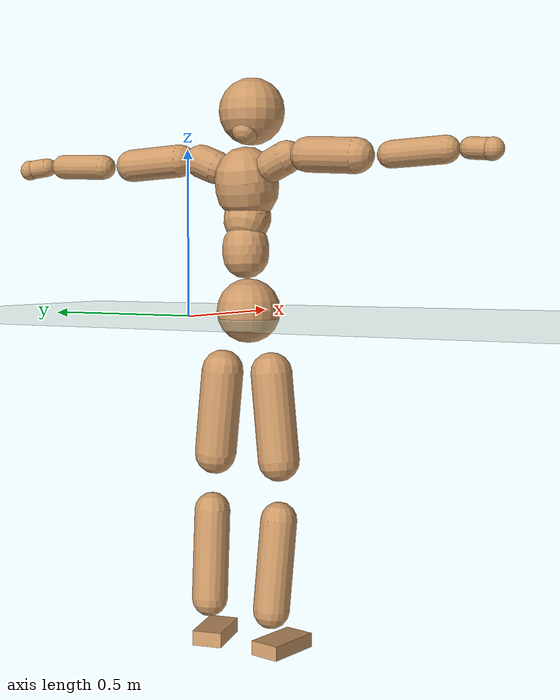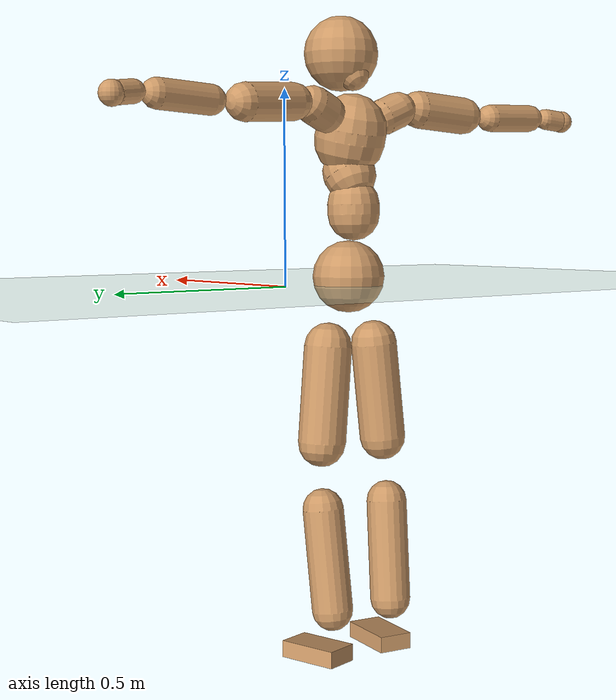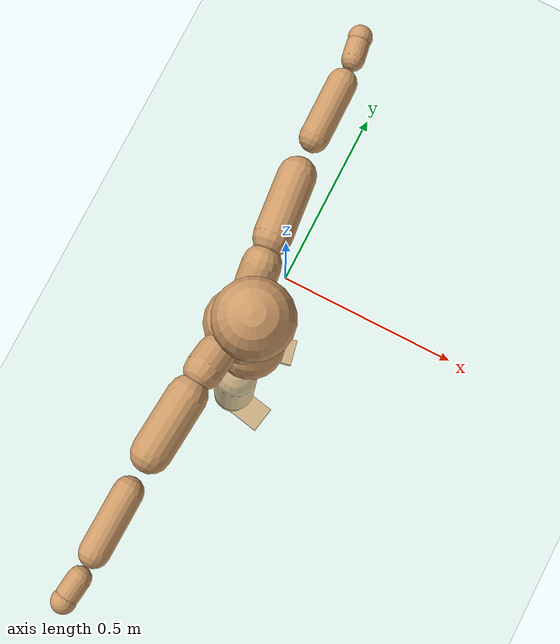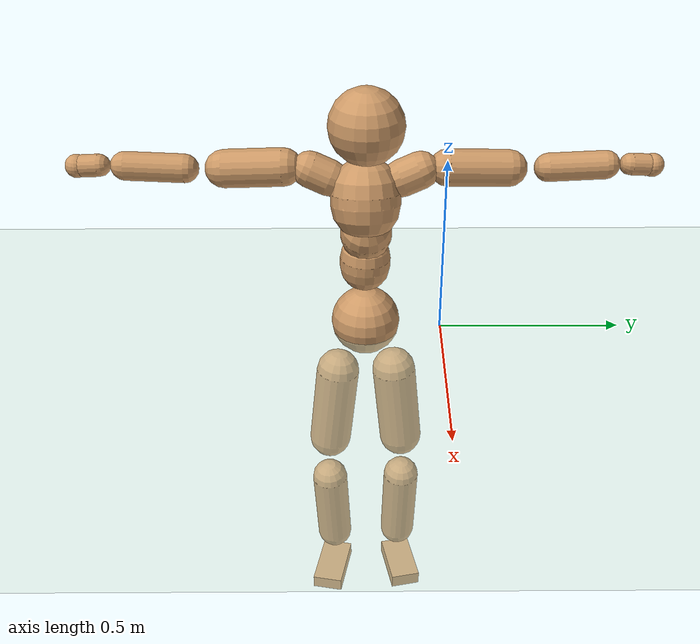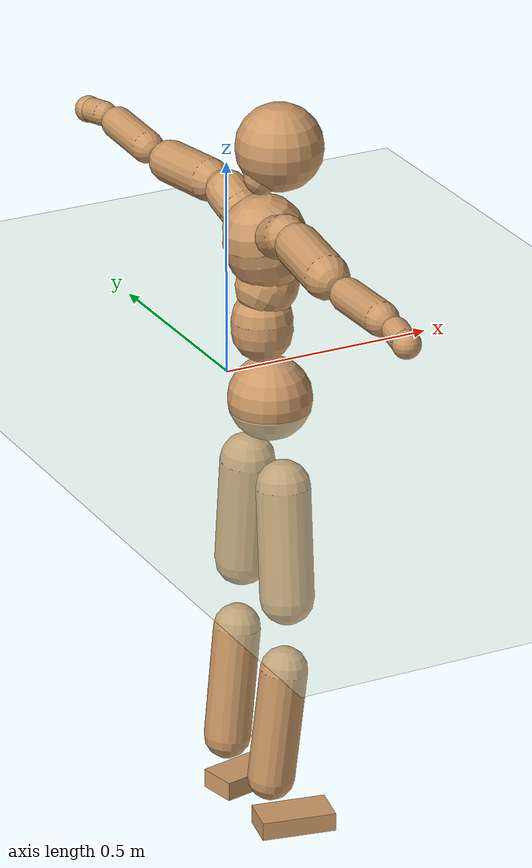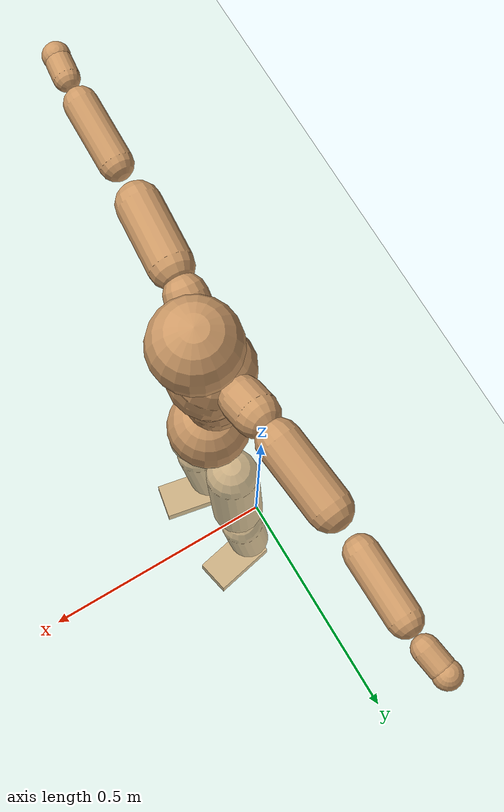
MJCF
<mujoco model="humanoid">
  <compiler coordinate="local" angle="radian"/>
  <default>
    <joint damping="0.0" armature="0.01" stiffness="0.0" limited="true"/>
    <geom conaffinity="1" condim="3" contype="7" margin="0.001" rgba="0.8 0.6 .4 1"/>
  </default>
  <asset>
    <texture type="skybox" builtin="gradient" rgb1=".4 .5 .6" rgb2="0 0 0" width="100" height="100"/>
    <texture builtin="flat" height="1278" mark="cross" markrgb="1 1 1" name="texgeom" random="0.01" rgb1="0.8 0.6 0.4" rgb2="0.8 0.6 0.4" type="cube" width="127"/>
    <texture builtin="checker" height="100" name="texplane" rgb1="0 0 0" rgb2="0.8 0.8 0.8" type="2d" width="100"/>
    <material name="MatPlane" reflectance="0.5" shininess="1" specular="1" texrepeat="60 60" texture="texplane"/>
    <material name="geom" texture="texgeom" texuniform="true"/>
  </asset>
  <worldbody>
    <light cutoff="100" diffuse="1 1 1" dir="-0 0 -1.3" directional="true" exponent="1" pos="0 0 1.3" specular=".1 .1 .1"/>
    <geom conaffinity="1" condim="3" name="floor" pos="0 0 0" rgba="0.8 0.9 0.8 1" size="100 100 .2" type="plane" material="MatPlane"/>
    <body name="Pelvis" pos="-0.0008 -0.2096 0.0213">
      <freejoint name="Pelvis"/>
      <geom type="sphere" contype="1" conaffinity="1" density="500" size="0.0950" pos="0.0000 0.0000 0.0000" name="Pelvis"/>
      <body name="L_Hip" pos="-0.0125 0.0741 -0.0959">
        <joint name="L_Hip_x" type="hinge" pos="0 0 0" axis="1 0 0" stiffness="800" damping="80" armature="0.02" range="-180.0000 180.0000"/>
        <joint name="L_Hip_y" type="hinge" pos="0 0 0" axis="0 1 0" stiffness="800" damping="80" armature="0.02" range="-180.0000 180.0000"/>
        <joint name="L_Hip_z" type="hinge" pos="0 0 0" axis="0 0 1" stiffness="800" damping="80" armature="0.02" range="-180.0000 180.0000"/>
        <geom type="capsule" contype="1" conaffinity="1" density="500" fromto="-0.0009 0.0078 -0.0839 -0.0034 0.0310 -0.3356" size="0.0624" name="L_Hip"/>
        <body name="L_Knee" pos="-0.0043 0.0388 -0.4195">
          <joint name="L_Knee_x" type="hinge" pos="0 0 0" axis="1 0 0" stiffness="800" damping="80" armature="0.02" range="-180.0000 180.0000"/>
          <joint name="L_Knee_y" type="hinge" pos="0 0 0" axis="0 1 0" stiffness="800" damping="80" armature="0.02" range="-180.0000 180.0000"/>
          <joint name="L_Knee_z" type="hinge" pos="0 0 0" axis="0 0 1" stiffness="800" damping="80" armature="0.02" range="-180.0000 180.0000"/>
          <geom type="capsule" contype="1" conaffinity="1" density="500" fromto="-0.0097 -0.0025 -0.0885 -0.0386 -0.0099 -0.3539" size="0.0537" name="L_Knee"/>
          <body name="L_Ankle" pos="-0.0483 -0.0123 -0.4424">
            <joint name="L_Ankle_x" type="hinge" pos="0 0 0" axis="1 0 0" stiffness="800" damping="80" armature="0.02" range="-180.0000 180.0000"/>
            <joint name="L_Ankle_y" type="hinge" pos="0 0 0" axis="0 1 0" stiffness="800" damping="80" armature="0.02" range="-180.0000 180.0000"/>
            <joint name="L_Ankle_z" type="hinge" pos="0 0 0" axis="0 0 1" stiffness="800" damping="80" armature="0.02" range="-180.0000 180.0000"/>
            <geom type="box" contype="1" conaffinity="1" density="500" pos="0.0598 0.0123 -0.0304" size="0.0829 0.0449 0.0222" quat="0.9948 0.0000 0.0000 0.1015" name="L_Ankle"/>
            <body name="L_Toe" pos="0.1197 0.0247 -0.0608">
              <joint name="L_Toe_x" type="hinge" pos="0 0 0" axis="1 0 0" stiffness="500" damping="50" armature="0.02" range="-180.0000 180.0000"/>
              <joint name="L_Toe_y" type="hinge" pos="0 0 0" axis="0 1 0" stiffness="500" damping="50" armature="0.02" range="-180.0000 180.0000"/>
              <joint name="L_Toe_z" type="hinge" pos="0 0 0" axis="0 0 1" stiffness="500" damping="50" armature="0.02" range="-180.0000 180.0000"/>
              <geom type="box" contype="1" conaffinity="1" density="500" pos="0.0000 0.0000 0.0297" size="0.0009 0.0023 0.0011" quat="0.9942 0.0000 0.0000 0.1077" name="L_Toe"/>
            </body>
          </body>
        </body>
      </body>
      <body name="R_Hip" pos="-0.0078 -0.0716 -0.0952">
        <joint name="R_Hip_x" type="hinge" pos="0 0 0" axis="1 0 0" stiffness="800" damping="80" armature="0.02" range="-180.0000 180.0000"/>
        <joint name="R_Hip_y" type="hinge" pos="0 0 0" axis="0 1 0" stiffness="800" damping="80" armature="0.02" range="-180.0000 180.0000"/>
        <joint name="R_Hip_z" type="hinge" pos="0 0 0" axis="0 0 1" stiffness="800" damping="80" armature="0.02" range="-180.0000 180.0000"/>
        <geom type="capsule" contype="1" conaffinity="1" density="500" fromto="-0.0014 -0.0093 -0.0856 -0.0058 -0.0371 -0.3423" size="0.0614" name="R_Hip"/>
        <body name="R_Knee" pos="-0.0072 -0.0463 -0.4279">
          <joint name="R_Knee_x" type="hinge" pos="0 0 0" axis="1 0 0" stiffness="800" damping="80" armature="0.02" range="-180.0000 180.0000"/>
          <joint name="R_Knee_y" type="hinge" pos="0 0 0" axis="0 1 0" stiffness="800" damping="80" armature="0.02" range="-180.0000 180.0000"/>
          <joint name="R_Knee_z" type="hinge" pos="0 0 0" axis="0 0 1" stiffness="800" damping="80" armature="0.02" range="-180.0000 180.0000"/>
          <geom type="capsule" contype="1" conaffinity="1" density="500" fromto="-0.0090 0.0033 -0.0886 -0.0358 0.0131 -0.3544" size="0.054" name="R_Knee"/>
          <body name="R_Ankle" pos="-0.0448 0.0164 -0.443">
            <joint name="R_Ankle_x" type="hinge" pos="0 0 0" axis="1 0 0" stiffness="800" damping="80" armature="0.02" range="-180.0000 180.0000"/>
            <joint name="R_Ankle_y" type="hinge" pos="0 0 0" axis="0 1 0" stiffness="800" damping="80" armature="0.02" range="-180.0000 180.0000"/>
            <joint name="R_Ankle_z" type="hinge" pos="0 0 0" axis="0 0 1" stiffness="800" damping="80" armature="0.02" range="-180.0000 180.0000"/>
            <geom type="box" contype="1" conaffinity="1" density="500" pos="0.0616 -0.0118 -0.0267" size="0.0856 0.0461 0.0215" quat="0.9955 0.0000 0.0000 -0.0948" name="R_Ankle"/>
            <body name="R_Toe" pos="0.1233 -0.0237 -0.0534">
              <joint name="R_Toe_x" type="hinge" pos="0 0 0" axis="1 0 0" stiffness="500" damping="50" armature="0.02" range="-180.0000 180.0000"/>
              <joint name="R_Toe_y" type="hinge" pos="0 0 0" axis="0 1 0" stiffness="500" damping="50" armature="0.02" range="-180.0000 180.0000"/>
              <joint name="R_Toe_z" type="hinge" pos="0 0 0" axis="0 0 1" stiffness="500" damping="50" armature="0.02" range="-180.0000 180.0000"/>
              <geom type="box" contype="1" conaffinity="1" density="500" pos="0.0000 0.0000 0.0286" size="0.0008 0.0022 0.0012" quat="0.9963 0.0000 0.0000 -0.0856" name="R_Toe"/>
            </body>
          </body>
        </body>
      </body>
      <body name="Torso" pos="-0.0194 -0.0025 0.1094">
        <joint name="Torso_x" type="hinge" pos="0 0 0" axis="1 0 0" stiffness="1000" damping="100" armature="0.02" range="-180.0000 180.0000"/>
        <joint name="Torso_y" type="hinge" pos="0 0 0" axis="0 1 0" stiffness="1000" damping="100" armature="0.02" range="-180.0000 180.0000"/>
        <joint name="Torso_z" type="hinge" pos="0 0 0" axis="0 0 1" stiffness="1000" damping="100" armature="0.02" range="-180.0000 180.0000"/>
        <geom type="capsule" contype="1" conaffinity="1" density="500" fromto="-0.0001 0.0024 0.0811 -0.0001 0.0016 0.0541" size="0.0685" name="Torso"/>
        <body name="Spine" pos="-0.0001 0.0039 0.1352">
          <joint name="Spine_x" type="hinge" pos="0 0 0" axis="1 0 0" stiffness="1000" damping="100" armature="0.02" range="-180.0000 180.0000"/>
          <joint name="Spine_y" type="hinge" pos="0 0 0" axis="0 1 0" stiffness="1000" damping="100" armature="0.02" range="-180.0000 180.0000"/>
          <joint name="Spine_z" type="hinge" pos="0 0 0" axis="0 0 1" stiffness="1000" damping="100" armature="0.02" range="-180.0000 180.0000"/>
          <geom type="capsule" contype="1" conaffinity="1" density="500" fromto="0.0169 0.0008 0.0306 0.0113 0.0005 0.0204" size="0.0691" name="Spine"/>
          <body name="Chest" pos="0.0282 0.0013 0.0509">
            <joint name="Chest_x" type="hinge" pos="0 0 0" axis="1 0 0" stiffness="1000" damping="100" armature="0.02" range="-180.0000 180.0000"/>
            <joint name="Chest_y" type="hinge" pos="0 0 0" axis="0 1 0" stiffness="1000" damping="100" armature="0.02" range="-180.0000 180.0000"/>
            <joint name="Chest_z" type="hinge" pos="0 0 0" axis="0 0 1" stiffness="1000" damping="100" armature="0.02" range="-180.0000 180.0000"/>
            <geom type="capsule" contype="1" conaffinity="1" density="500" fromto="-0.0221 -0.0012 0.0892 -0.0147 -0.0008 0.0595" size="0.093" name="Chest"/>
            <body name="Neck" pos="-0.0399 -0.0039 0.2137">
              <joint name="Neck_x" type="hinge" pos="0 0 0" axis="1 0 0" stiffness="500" damping="50" armature="0.02" range="-180.0000 180.0000"/>
              <joint name="Neck_y" type="hinge" pos="0 0 0" axis="0 1 0" stiffness="500" damping="50" armature="0.02" range="-180.0000 180.0000"/>
              <joint name="Neck_z" type="hinge" pos="0 0 0" axis="0 0 1" stiffness="500" damping="50" armature="0.02" range="-180.0000 180.0000"/>
              <geom type="capsule" contype="1" conaffinity="1" density="500" fromto="0.0112 0.0010 0.0145 0.0449 0.0042 0.0581" size="0.0406" name="Neck"/>
              <body name="Head" pos="0.0561 0.0052 0.0726">
                <joint name="Head_x" type="hinge" pos="0 0 0" axis="1 0 0" stiffness="500" damping="50" armature="0.02" range="-180.0000 180.0000"/>
                <joint name="Head_y" type="hinge" pos="0 0 0" axis="0 1 0" stiffness="500" damping="50" armature="0.02" range="-180.0000 180.0000"/>
                <joint name="Head_z" type="hinge" pos="0 0 0" axis="0 0 1" stiffness="500" damping="50" armature="0.02" range="-180.0000 180.0000"/>
                <geom type="sphere" contype="1" conaffinity="1" density="500" size="0.0975" pos="0.0000 0.0000 0.0000" name="Head"/>
              </body>
            </body>
            <body name="L_Thorax" pos="-0.0328 0.0757 0.1171">
              <joint name="L_Thorax_x" type="hinge" pos="0 0 0" axis="1 0 0" stiffness="500" damping="50" armature="0.02" range="-180.0000 180.0000"/>
              <joint name="L_Thorax_y" type="hinge" pos="0 0 0" axis="0 1 0" stiffness="500" damping="50" armature="0.02" range="-180.0000 180.0000"/>
              <joint name="L_Thorax_z" type="hinge" pos="0 0 0" axis="0 0 1" stiffness="500" damping="50" armature="0.02" range="-180.0000 180.0000"/>
              <geom type="capsule" contype="1" conaffinity="1" density="500" fromto="-0.0015 0.0162 0.0068 -0.0062 0.0649 0.0270" size="0.0489" name="L_Thorax"/>
              <body name="L_Shoulder" pos="-0.0077 0.0811 0.0338">
                <joint name="L_Shoulder_x" type="hinge" pos="0 0 0" axis="1 0 0" stiffness="500" damping="50" armature="0.02" range="-720.0000 720.0000"/>
                <joint name="L_Shoulder_y" type="hinge" pos="0 0 0" axis="0 1 0" stiffness="500" damping="50" armature="0.02" range="-720.0000 720.0000"/>
                <joint name="L_Shoulder_z" type="hinge" pos="0 0 0" axis="0 0 1" stiffness="500" damping="50" armature="0.02" range="-720.0000 720.0000"/>
                <geom type="capsule" contype="1" conaffinity="1" density="500" fromto="-0.0057 0.0536 -0.0033 -0.0226 0.2144 -0.0131" size="0.0482" name="L_Shoulder"/>
                <body name="L_Elbow" pos="-0.0283 0.268 -0.0164">
                  <joint name="L_Elbow_x" type="hinge" pos="0 0 0" axis="1 0 0" stiffness="500" damping="50" armature="0.02" range="-720.0000 720.0000"/>
                  <joint name="L_Elbow_y" type="hinge" pos="0 0 0" axis="0 1 0" stiffness="500" damping="50" armature="0.02" range="-720.0000 720.0000"/>
                  <joint name="L_Elbow_z" type="hinge" pos="0 0 0" axis="0 0 1" stiffness="500" damping="50" armature="0.02" range="-720.0000 720.0000"/>
                  <geom type="capsule" contype="1" conaffinity="1" density="500" fromto="-0.0003 0.0498 0.0023 -0.0012 0.1990 0.0090" size="0.0373" name="L_Elbow"/>
                  <body name="L_Wrist" pos="-0.0015 0.2488 0.0113">
                    <joint name="L_Wrist_x" type="hinge" pos="0 0 0" axis="1 0 0" stiffness="300" damping="30" armature="0.02" range="-180.0000 180.0000"/>
                    <joint name="L_Wrist_y" type="hinge" pos="0 0 0" axis="0 1 0" stiffness="300" damping="30" armature="0.02" range="-180.0000 180.0000"/>
                    <joint name="L_Wrist_z" type="hinge" pos="0 0 0" axis="0 0 1" stiffness="300" damping="30" armature="0.02" range="-180.0000 180.0000"/>
                    <geom type="capsule" contype="1" conaffinity="1" density="500" fromto="-0.0026 0.0152 -0.0019 -0.0103 0.0609 -0.0076" size="0.0286" name="L_Wrist"/>
                    <body name="L_Hand" pos="-0.0129 0.0761 -0.0095">
                      <joint name="L_Hand_x" type="hinge" pos="0 0 0" axis="1 0 0" stiffness="300" damping="30" armature="0.02" range="-180.0000 180.0000"/>
                      <joint name="L_Hand_y" type="hinge" pos="0 0 0" axis="0 1 0" stiffness="300" damping="30" armature="0.02" range="-180.0000 180.0000"/>
                      <joint name="L_Hand_z" type="hinge" pos="0 0 0" axis="0 0 1" stiffness="300" damping="30" armature="0.02" range="-180.0000 180.0000"/>
                      <geom type="sphere" contype="1" conaffinity="1" density="500" size="0.0307" pos="0.0000 0.0000 0.0000" name="L_Hand"/>
                    </body>
                  </body>
                </body>
              </body>
            </body>
            <body name="R_Thorax" pos="-0.0379 -0.0777 0.1154">
              <joint name="R_Thorax_x" type="hinge" pos="0 0 0" axis="1 0 0" stiffness="500" damping="50" armature="0.02" range="-180.0000 180.0000"/>
              <joint name="R_Thorax_y" type="hinge" pos="0 0 0" axis="0 1 0" stiffness="500" damping="50" armature="0.02" range="-180.0000 180.0000"/>
              <joint name="R_Thorax_z" type="hinge" pos="0 0 0" axis="0 0 1" stiffness="500" damping="50" armature="0.02" range="-180.0000 180.0000"/>
              <geom type="capsule" contype="1" conaffinity="1" density="500" fromto="-0.0017 -0.0168 0.0072 -0.0068 -0.0671 0.0290" size="0.0475" name="R_Thorax"/>
              <body name="R_Shoulder" pos="-0.0084 -0.0839 0.0362">
                <joint name="R_Shoulder_x" type="hinge" pos="0 0 0" axis="1 0 0" stiffness="500" damping="50" armature="0.02" range="-720.0000 720.0000"/>
                <joint name="R_Shoulder_y" type="hinge" pos="0 0 0" axis="0 1 0" stiffness="500" damping="50" armature="0.02" range="-720.0000 720.0000"/>
                <joint name="R_Shoulder_z" type="hinge" pos="0 0 0" axis="0 0 1" stiffness="500" damping="50" armature="0.02" range="-720.0000 720.0000"/>
                <geom type="capsule" contype="1" conaffinity="1" density="500" fromto="-0.0045 -0.0517 -0.0034 -0.0179 -0.2069 -0.0137" size="0.0498" name="R_Shoulder"/>
                <body name="R_Elbow" pos="-0.0223 -0.2586 -0.0172">
                  <joint name="R_Elbow_x" type="hinge" pos="0 0 0" axis="1 0 0" stiffness="500" damping="50" armature="0.02" range="-720.0000 720.0000"/>
                  <joint name="R_Elbow_y" type="hinge" pos="0 0 0" axis="0 1 0" stiffness="500" damping="50" armature="0.02" range="-720.0000 720.0000"/>
                  <joint name="R_Elbow_z" type="hinge" pos="0 0 0" axis="0 0 1" stiffness="500" damping="50" armature="0.02" range="-720.0000 720.0000"/>
                  <geom type="capsule" contype="1" conaffinity="1" density="500" fromto="-0.0012 -0.0516 0.0019 -0.0049 -0.2065 0.0076" size="0.0377" name="R_Elbow"/>
                  <body name="R_Wrist" pos="-0.0061 -0.2581 0.0095">
                    <joint name="R_Wrist_x" type="hinge" pos="0 0 0" axis="1 0 0" stiffness="300" damping="30" armature="0.02" range="-180.0000 180.0000"/>
                    <joint name="R_Wrist_y" type="hinge" pos="0 0 0" axis="0 1 0" stiffness="300" damping="30" armature="0.02" range="-180.0000 180.0000"/>
                    <joint name="R_Wrist_z" type="hinge" pos="0 0 0" axis="0 0 1" stiffness="300" damping="30" armature="0.02" range="-180.0000 180.0000"/>
                    <geom type="capsule" contype="1" conaffinity="1" density="500" fromto="-0.0020 -0.0153 -0.0014 -0.0079 -0.0613 -0.0056" size="0.0293" name="R_Wrist"/>
                    <body name="R_Hand" pos="-0.0099 -0.0766 -0.0069">
                      <joint name="R_Hand_x" type="hinge" pos="0 0 0" axis="1 0 0" stiffness="300" damping="30" armature="0.02" range="-180.0000 180.0000"/>
                      <joint name="R_Hand_y" type="hinge" pos="0 0 0" axis="0 1 0" stiffness="300" damping="30" armature="0.02" range="-180.0000 180.0000"/>
                      <joint name="R_Hand_z" type="hinge" pos="0 0 0" axis="0 0 1" stiffness="300" damping="30" armature="0.02" range="-180.0000 180.0000"/>
                      <geom type="sphere" contype="1" conaffinity="1" density="500" size="0.0308" pos="0.0000 0.0000 0.0000" name="R_Hand"/>
                    </body>
                  </body>
                </body>
              </body>
            </body>
          </body>
        </body>
      </body>
    </body>
  </worldbody>
  <actuator>
    <motor name="L_Hip_x" joint="L_Hip_x" gear="500"/>
    <motor name="L_Hip_y" joint="L_Hip_y" gear="500"/>
    <motor name="L_Hip_z" joint="L_Hip_z" gear="500"/>
    <motor name="L_Knee_x" joint="L_Knee_x" gear="500"/>
    <motor name="L_Knee_y" joint="L_Knee_y" gear="500"/>
    <motor name="L_Knee_z" joint="L_Knee_z" gear="500"/>
    <motor name="L_Ankle_x" joint="L_Ankle_x" gear="500"/>
    <motor name="L_Ankle_y" joint="L_Ankle_y" gear="500"/>
    <motor name="L_Ankle_z" joint="L_Ankle_z" gear="500"/>
    <motor name="L_Toe_x" joint="L_Toe_x" gear="500"/>
    <motor name="L_Toe_y" joint="L_Toe_y" gear="500"/>
    <motor name="L_Toe_z" joint="L_Toe_z" gear="500"/>
    <motor name="R_Hip_x" joint="R_Hip_x" gear="500"/>
    <motor name="R_Hip_y" joint="R_Hip_y" gear="500"/>
    <motor name="R_Hip_z" joint="R_Hip_z" gear="500"/>
    <motor name="R_Knee_x" joint="R_Knee_x" gear="500"/>
    <motor name="R_Knee_y" joint="R_Knee_y" gear="500"/>
    <motor name="R_Knee_z" joint="R_Knee_z" gear="500"/>
    <motor name="R_Ankle_x" joint="R_Ankle_x" gear="500"/>
    <motor name="R_Ankle_y" joint="R_Ankle_y" gear="500"/>
    <motor name="R_Ankle_z" joint="R_Ankle_z" gear="500"/>
    <motor name="R_Toe_x" joint="R_Toe_x" gear="500"/>
    <motor name="R_Toe_y" joint="R_Toe_y" gear="500"/>
    <motor name="R_Toe_z" joint="R_Toe_z" gear="500"/>
    <motor name="Torso_x" joint="Torso_x" gear="500"/>
    <motor name="Torso_y" joint="Torso_y" gear="500"/>
    <motor name="Torso_z" joint="Torso_z" gear="500"/>
    <motor name="Spine_x" joint="Spine_x" gear="500"/>
    <motor name="Spine_y" joint="Spine_y" gear="500"/>
    <motor name="Spine_z" joint="Spine_z" gear="500"/>
    <motor name="Chest_x" joint="Chest_x" gear="500"/>
    <motor name="Chest_y" joint="Chest_y" gear="500"/>
    <motor name="Chest_z" joint="Chest_z" gear="500"/>
    <motor name="Neck_x" joint="Neck_x" gear="500"/>
    <motor name="Neck_y" joint="Neck_y" gear="500"/>
    <motor name="Neck_z" joint="Neck_z" gear="500"/>
    <motor name="Head_x" joint="Head_x" gear="500"/>
    <motor name="Head_y" joint="Head_y" gear="500"/>
    <motor name="Head_z" joint="Head_z" gear="500"/>
    <motor name="L_Thorax_x" joint="L_Thorax_x" gear="500"/>
    <motor name="L_Thorax_y" joint="L_Thorax_y" gear="500"/>
    <motor name="L_Thorax_z" joint="L_Thorax_z" gear="500"/>
    <motor name="L_Shoulder_x" joint="L_Shoulder_x" gear="500"/>
    <motor name="L_Shoulder_y" joint="L_Shoulder_y" gear="500"/>
    <motor name="L_Shoulder_z" joint="L_Shoulder_z" gear="500"/>
    <motor name="L_Elbow_x" joint="L_Elbow_x" gear="500"/>
    <motor name="L_Elbow_y" joint="L_Elbow_y" gear="500"/>
    <motor name="L_Elbow_z" joint="L_Elbow_z" gear="500"/>
    <motor name="L_Wrist_x" joint="L_Wrist_x" gear="500"/>
    <motor name="L_Wrist_y" joint="L_Wrist_y" gear="500"/>
    <motor name="L_Wrist_z" joint="L_Wrist_z" gear="500"/>
    <motor name="L_Hand_x" joint="L_Hand_x" gear="500"/>
    <motor name="L_Hand_y" joint="L_Hand_y" gear="500"/>
    <motor name="L_Hand_z" joint="L_Hand_z" gear="500"/>
    <motor name="R_Thorax_x" joint="R_Thorax_x" gear="500"/>
    <motor name="R_Thorax_y" joint="R_Thorax_y" gear="500"/>
    <motor name="R_Thorax_z" joint="R_Thorax_z" gear="500"/>
    <motor name="R_Shoulder_x" joint="R_Shoulder_x" gear="500"/>
    <motor name="R_Shoulder_y" joint="R_Shoulder_y" gear="500"/>
    <motor name="R_Shoulder_z" joint="R_Shoulder_z" gear="500"/>
    <motor name="R_Elbow_x" joint="R_Elbow_x" gear="500"/>
    <motor name="R_Elbow_y" joint="R_Elbow_y" gear="500"/>
    <motor name="R_Elbow_z" joint="R_Elbow_z" gear="500"/>
    <motor name="R_Wrist_x" joint="R_Wrist_x" gear="500"/>
    <motor name="R_Wrist_y" joint="R_Wrist_y" gear="500"/>
    <motor name="R_Wrist_z" joint="R_Wrist_z" gear="500"/>
    <motor name="R_Hand_x" joint="R_Hand_x" gear="500"/>
    <motor name="R_Hand_y" joint="R_Hand_y" gear="500"/>
    <motor name="R_Hand_z" joint="R_Hand_z" gear="500"/>
  </actuator>
  <contact>
    <exclude body1="Torso" body2="Chest"/>
    <exclude body1="Head" body2="Chest"/>
    <exclude body1="R_Knee" body2="R_Toe"/>
    <exclude body1="R_Knee" body2="L_Ankle"/>
    <exclude body1="R_Knee" body2="L_Toe"/>
    <exclude body1="L_Knee" body2="L_Toe"/>
    <exclude body1="L_Knee" body2="R_Ankle"/>
    <exclude body1="L_Knee" body2="R_Toe"/>
    <exclude body1="L_Shoulder" body2="Chest"/>
    <exclude body1="R_Shoulder" body2="Chest"/>
  </contact>
  <sensor/>
  <size njmax="700" nconmax="700"/>
</mujoco>
